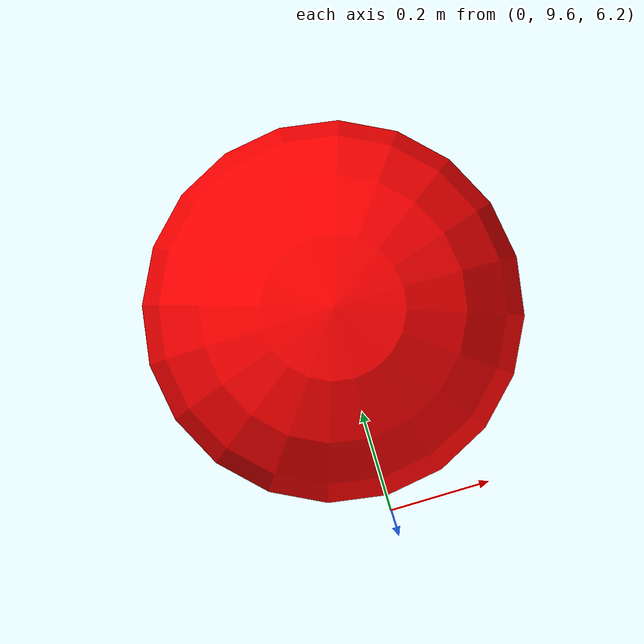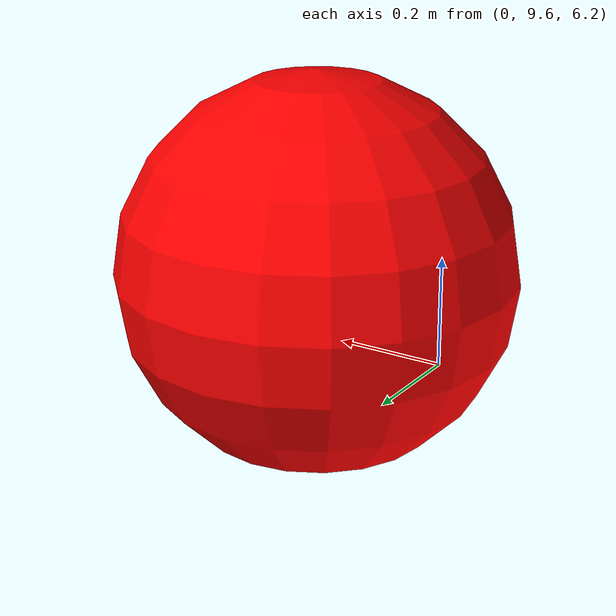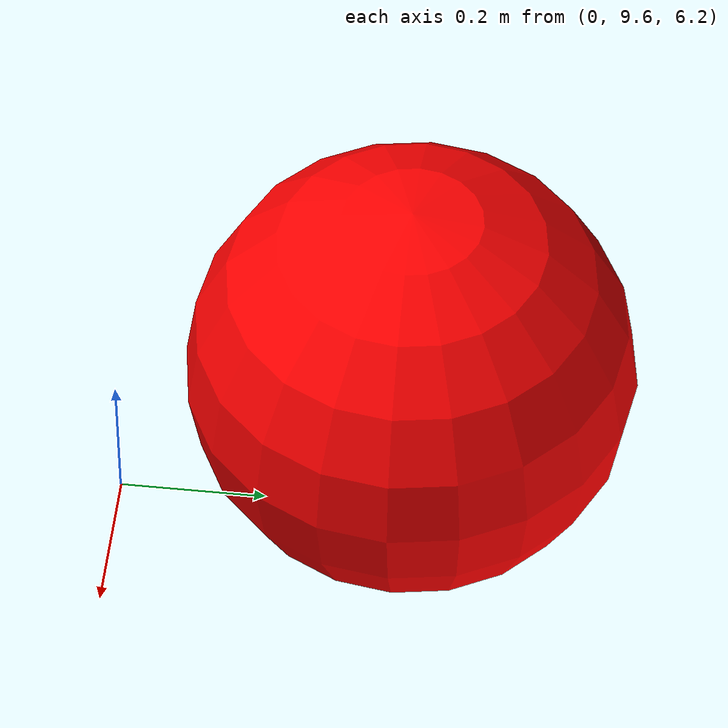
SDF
<?xml version="1.0" ?>
<sdf version="1.6">
  <world name="balloon_hunt">
    <physics name="default_physics" default="true" type="ode">
      <max_step_size>0.001</max_step_size>
      <real_time_factor>1.0</real_time_factor>
      <real_time_update_rate>1000</real_time_update_rate>
    </physics>

    <scene>
      <ambient>0.4 0.4 0.4 1</ambient>
      <background>0.7 0.7 0.7 1</background>
      <shadows>true</shadows>
    </scene>

    <light name="sun" type="directional">
      <cast_shadows>true</cast_shadows>
      <pose>0 0 10 0 0 0</pose>
      <diffuse>0.8 0.8 0.8 1</diffuse>
      <specular>0.2 0.2 0.2 1</specular>
      <attenuation>
        <range>1000</range>
        <constant>0.9</constant>
        <linear>0.01</linear>
        <quadratic>0.001</quadratic>
      </attenuation>
      <direction>-0.5 0.1 -0.9</direction>
    </light>

    <model name="ground_plane">
      <static>true</static>
      <link name="link">
        <collision name="collision">
          <geometry>
            <plane>
              <normal>0 0 1</normal>
              <size>100 100</size>
            </plane>
          </geometry>
        </collision>
        <visual name="visual">
          <geometry>
            <plane>
              <normal>0 0 1</normal>
              <size>100 100</size>
            </plane>
          </geometry>
          <material>
            <script>
              <uri>file://media/materials/scripts/gazebo.material</uri>
              <name>Gazebo/Grey</name>
            </script>
            <ambient>0.8 0.8 0.8 1</ambient>
            <diffuse>0.8 0.8 0.8 1</diffuse>
            <specular>0.8 0.8 0.8 1</specular>
          </material>
        </visual>
      </link>
    </model>

    <include>
      <uri>model://red_balloon</uri>
      <pose>0 10 5 0 0 0</pose>
      <name>target_balloon</name>
    </include>

    <!-- Publish /gazebo/model_states and /gazebo/link_states -->
    <plugin name="gazebo_ros_state" filename="libgazebo_ros_state.so">
      <ros>
        <namespace>/gazebo</namespace>
      </ros>
      <update_rate>30.0</update_rate>
    </plugin>

  </world>
</sdf>

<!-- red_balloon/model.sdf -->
<sdf version="1.6">
  <model name="red_balloon">
    <static>false</static>
    <link name="balloon_link">
      <pose>0 0 1.5 0 0 0</pose>
      <kinematic>true</kinematic>
      <inertial>
        <mass>0.01</mass>
        <inertia>
          <ixx>0.0001</ixx>
          <ixy>0</ixy>
          <ixz>0</ixz>
          <iyy>0.0001</iyy>
          <iyz>0</iyz>
          <izz>0.0001</izz>
        </inertia>
      </inertial>
      <collision name="balloon_collision">
        <geometry>
          <sphere>
            <radius>0.3</radius>
          </sphere>
        </geometry>
        <surface>
          <contact>
            <collide_bitmask>0x01</collide_bitmask>
          </contact>
        </surface>
      </collision>
      <visual name="balloon_visual">
        <geometry>
          <sphere>
            <radius>0.3</radius>
          </sphere>
        </geometry>
        <material>
          <ambient>1 0 0 1</ambient>
          <diffuse>1 0 0 1</diffuse>
          <specular>0.5 0.5 0.5 1</specular>
        </material>
      </visual>
    </link>
    <plugin name="balloon_collision_detector" filename="libballoon_collision_plugin.so">
      <balloon_name>red_balloon</balloon_name>
    </plugin>
  </model>
</sdf>
